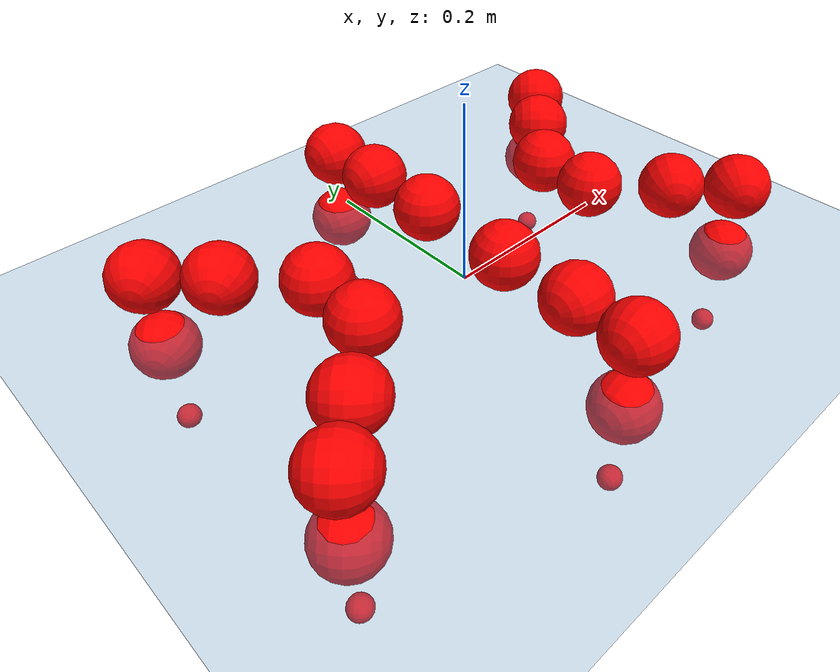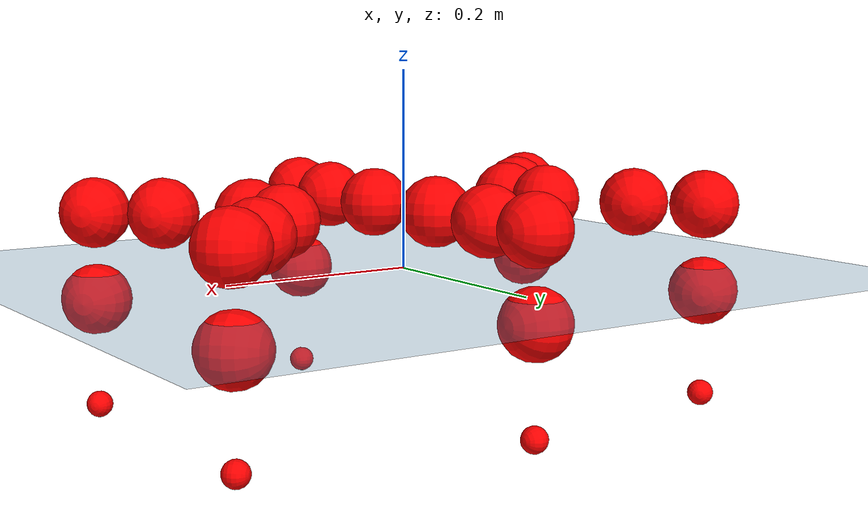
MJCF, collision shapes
<mujoco model="Golem">
  <compiler angle="radian" assetdir="assets" balanceinertia="true" inertiafromgeom="false"/>

  <option timestep="0.005" density="1.2" viscosity="2e-05"/>

  <size nkey="1"/>

  <visual>
    <quality shadowsize="8192"/>
    <map shadowclip="0.5"/>
  </visual>

  <default>
    <default class="/">
      <joint armature="0.01" damping="0.01" frictionloss="0.01"/>
      <geom contype="0" conaffinity="0" group="1" solref="-1000 -80"/>
      <site size="0.01 0.005 0.005" group="5"/>
      <general forcelimited="true" biastype="affine" gainprm="25" biasprm="0 -25 -0.5"/>
      <default class="visual">
        <geom type="mesh" group="2"/>
      </default>
      <default class="collision">
        <geom group="3"/>
      </default>
      <default class="foot">
        <geom size="0.01 0 0" condim="6" group="4" priority="1" solimp="0.015 1 0.01"/>
      </default>
      <default class="reward_collision_sphere">
        <geom group="5" rgba="1 0 0 1"/>
      </default>
    </default>
  </default>

  <asset>
    <texture type="skybox" colorspace="auto" name="//unnamed_texture_0" builtin="gradient" rgb1="0.95 0.95 0.95" rgb2="0.95 0.95 0.95" width="100" height="600"/>
    <texture type="2d" colorspace="auto" name="texplane" builtin="checker" rgb1="0.345 0.575 0.748" rgb2="0.345 0.575 0.748" markrgb="1 1 1" width="512" height="512"/>
    <material name="MatPlane" class="/" texture="texplane" texuniform="true" texrepeat="2 2" specular="0.9"/>
    <mesh name="body" class="/" file="body.stl" scale="0.001 0.001 0.001"/>
    <mesh name="coxa" class="/" file="coxa.stl" scale="0.001 0.001 0.001"/>
    <mesh name="femur" class="/" file="femur.stl" scale="0.001 0.001 0.001"/>
    <mesh name="tibia" class="/" file="tibia.stl" scale="0.001 0.001 0.001"/>
    <mesh name="tarsus" class="/" file="tarsus.stl" scale="0.001 0.001 0.001"/>
  </asset>

  <worldbody>
    <geom name="floor" class="/" size="100 100 0.125" type="plane" group="0" material="MatPlane"/>
    <light name="toplight_shadow" class="/" pos="0 0 5" dir="0.0990148 0.0990148 -0.990148" type="directional" ambient="0.04 0.04 0.04" diffuse="0.55 0.55 0.55" specular="0.12 0.12 0.12"/>
    <light name="toplight_fill" class="/" pos="0 0 5" dir="0.0990148 0.0990148 -0.990148" type="directional" castshadow="false" ambient="0.04 0.04 0.04" diffuse="0.3 0.3 0.3" specular="0.08 0.08 0.08"/>
    <body name="trunk" pos="0.000354608 0.000201444 -0.000224717" quat="1 0.000194823 0.000439343 5.54417e-05">
      <inertial pos="-0.00026921 0.00114379 -0.00275332" quat="0.99999 -0.000535735 0.00429529 -0.00120427" mass="2.52115" diaginertia="0.00985966 0.00117042 0.00914155"/>
      <joint name="//unnamed_joint_0" type="free"/>
      <geom name="//unnamed_geom_1" class="/" pos="0 0 0.0628995" quat="1 0 0 0" type="mesh" rgba="0.9 0.9 0.9 1" mesh="body"/>
      <site name="imu" class="/" pos="0.130129 0.00101259 0.102941" size="0.00877365"/>
      <camera name="track" class="/" pos="0 -1.30184 0" quat="0.707107 0.707107 0 0" mode="trackcom"/>
      <camera name="ego_camera" class="/" pos="0.129788 0 0.0982805" quat="-0.5 -0.5 0.5 0.5"/>
      <body name="coxa_RR" pos="-0.177078 -0.0544189 0.0620558" quat="0.382461 -8.48076e-05 0.000164387 -0.923971">
        <inertial pos="-0.000874173 -0.000761043 -0.000651992" quat="0.999974 -0.00531636 -0.0035347 -0.00336235" mass="0.138266" diaginertia="0.0100221 0.0011697 0.00928217"/>
        <joint name="coxa_joint_RR" class="/" pos="0 0 0" axis="0.000461713 0.00154488 -0.999999" range="-3.13854 3.1101" armature="0.00934465" damping="0.00158776" frictionloss="0.00876123"/>
        <geom name="//unnamed_geom_2" class="/" type="mesh" rgba="0.2 0.2 0.2 1" mesh="coxa"/>
        <geom name="//unnamed_geom_3" class="reward_collision_sphere" size="0.0350946" pos="-0.0299511 0 0"/>
        <body name="femur_RR" pos="0.059124 0.000825743 -0.00103309" quat="0.500056 -0.499885 0.500173 0.499885">
          <inertial pos="0.000689826 -0.000856365 8.7539e-05" quat="0.999996 -0.00210043 0.000116169 -0.00196847" mass="0.134082" diaginertia="0.00981791 0.00115666 0.00913538"/>
          <joint name="femur_joint_RR" class="/" pos="0 0 0" axis="0.000868456 0.00205649 -0.999998" range="-3.15719 3.1539" armature="0.00881034" damping="0.000432509" frictionloss="0.00841048"/>
          <geom name="//unnamed_geom_4" class="/" type="mesh" rgba="0.9 0.9 0.9 1" mesh="femur"/>
          <geom name="//unnamed_geom_5" class="reward_collision_sphere" size="0.0350946"/>
          <body name="tibia_RR" pos="0.000784605 -0.0703978 -0.000530349" quat="0.00021642 1 -0.000142636 0.00024339">
            <inertial pos="0.000364892 0.000527772 -0.000236507" quat="0.999991 -7.60357e-05 -0.00316408 0.00288048" mass="0.137532" diaginertia="0.00982293 0.00116831 0.00915383"/>
            <joint name="tibia_joint_RR" class="/" pos="0 0 0" axis="0.000900919 -0.00117201 0.999999" range="-3.12435 3.14253" armature="0.00884617" damping="0" frictionloss="0.00869649"/>
            <geom name="//unnamed_geom_6" class="/" type="mesh" rgba="0.2 0.2 0.2 1" mesh="tibia"/>
            <geom name="//unnamed_geom_7" class="reward_collision_sphere" size="0.0350946"/>
            <body name="tarsus_RR" pos="0.0877866 0.000757406 -0.000321566" quat="1 0.000325696 0.000193687 0.000219962">
              <inertial pos="0.0616378 0.000575451 0.000595716" quat="0.499204 0.500034 0.500358 0.500403" mass="0.136556" diaginertia="0.0099626 0.00118142 0.00923183"/>
              <joint name="tarsus_joint_RR" class="/" pos="0 0 0" axis="0.000413658 0.00266729 0.999996" stiffness="0.00192306" range="-3.13725 3.13815" armature="0.00896547" damping="0.0419347" frictionloss="0.0087876"/>
              <geom name="//unnamed_geom_8" class="/" type="mesh" rgba="0.9 0.9 0.9 1" mesh="tarsus"/>
              <geom name="foot_1" class="foot" size="0.00857484" pos="0.111818 0 0" quat="0 -0.707107 0 0.707107"/>
              <geom name="//unnamed_geom_10" class="reward_collision_sphere" size="0.0350946"/>
              <geom name="//unnamed_geom_11" class="reward_collision_sphere" size="0.0131605" pos="0.107325 0 0"/>
              <site name="foot_1" class="foot" pos="0.111818 0 0" quat="0 -0.707107 0 0.707107" size="0.00877365"/>
            </body>
          </body>
        </body>
      </body>
      <body name="coxa_RM" pos="-0.00104855 -0.086282 0.0622206" quat="0.7069 9.41519e-05 -2.88315e-05 -0.707314">
        <inertial pos="-0.000325926 5.16608e-06 -3.42087e-05" quat="1 -0.000791879 0.000461135 -0.000286408" mass="0.136269" diaginertia="0.0101278 0.00116587 0.00922183"/>
        <joint name="coxa_joint_RM" class="/" pos="0 0 0" axis="0.00162433 0.000987748 -0.999998" range="-3.14082 3.13553" armature="0.00860743" damping="0.00687103" frictionloss="0.00882155"/>
        <geom name="//unnamed_geom_12" class="/" type="mesh" rgba="0.2 0.2 0.2 1" mesh="coxa"/>
        <geom name="//unnamed_geom_13" class="reward_collision_sphere" size="0.0350946" pos="-0.0299511 0 0"/>
        <body name="femur_RM" pos="0.0585698 0.000593402 0.000239952" quat="0.500048 -0.4996 0.49999 0.500362">
          <inertial pos="0.000334472 0.000664279 -0.000675273" quat="0.999982 -0.00192114 0.00148821 0.00546547" mass="0.131139" diaginertia="0.00985271 0.00114329 0.00898403"/>
          <joint name="femur_joint_RM" class="/" pos="0 0 0" axis="0.000966636 0.00118339 -0.999999" range="-3.16589 3.14089" armature="0.00878881" damping="0.00929791" frictionloss="0.00878745"/>
          <geom name="//unnamed_geom_14" class="/" type="mesh" rgba="0.9 0.9 0.9 1" mesh="femur"/>
          <geom name="//unnamed_geom_15" class="reward_collision_sphere" size="0.0350946"/>
          <body name="tibia_RM" pos="-5.30092e-05 -0.0687856 -0.000802148" quat="3.90781e-05 1 0.000479313 -0.000409941">
            <inertial pos="0.000412752 -6.53637e-05 7.3893e-06" quat="1 0.000772699 -0.000353145 0.00050764" mass="0.135479" diaginertia="0.00992492 0.00115599 0.00898628"/>
            <joint name="tibia_joint_RM" class="/" pos="0 0 0" axis="-0.00192316 -0.00186694 0.999996" range="-3.13983 3.13583" armature="0.00855418" damping="0.00396007" frictionloss="0.00878664"/>
            <geom name="//unnamed_geom_16" class="/" type="mesh" rgba="0.2 0.2 0.2 1" mesh="tibia"/>
            <geom name="//unnamed_geom_17" class="reward_collision_sphere" size="0.0350946"/>
            <body name="tarsus_RM" pos="0.0882358 0.000292697 0.000845458" quat="1 -0.000271376 5.27525e-05 8.75103e-05">
              <inertial pos="0.0599938 0.000230949 0.000162544" quat="0.498492 0.500649 0.501981 0.49887" mass="0.135511" diaginertia="0.00983536 0.00117232 0.00900909"/>
              <joint name="tarsus_joint_RM" class="/" pos="0 0 0" axis="0.00131954 -0.000760992 0.999999" stiffness="0.000397816" range="-3.12987 3.16566" armature="0.00915381" damping="0.00491896" frictionloss="0.00818189"/>
              <geom name="//unnamed_geom_18" class="/" type="mesh" rgba="0.9 0.9 0.9 1" mesh="tarsus"/>
              <geom name="foot_2" class="foot" size="0.00869759" pos="0.111818 0 0" quat="0 -0.707107 0 0.707107"/>
              <geom name="//unnamed_geom_20" class="reward_collision_sphere" size="0.0350946"/>
              <geom name="//unnamed_geom_21" class="reward_collision_sphere" size="0.0131605" pos="0.107325 0 0"/>
              <site name="foot_2" class="foot" pos="0.111818 0 0" quat="0 -0.707107 0 0.707107" size="0.00877365"/>
            </body>
          </body>
        </body>
      </body>
      <body name="coxa_RF" pos="0.17723 -0.0542653 0.0622119" quat="0.923819 5.83591e-05 -8.2602e-05 -0.382829">
        <inertial pos="0.00099117 0.000791762 0.000280469" quat="0.999999 0.000163115 0.00106252 -0.00111617" mass="0.135898" diaginertia="0.0098933 0.00117905 0.00915203"/>
        <joint name="coxa_joint_RF" class="/" pos="0 0 0" axis="-0.000346561 -0.00023699 -1" range="-3.15831 3.12064" armature="0.00910639" damping="0.00302557" frictionloss="0.00897123"/>
        <geom name="//unnamed_geom_22" class="/" type="mesh" rgba="0.2 0.2 0.2 1" mesh="coxa"/>
        <geom name="//unnamed_geom_23" class="reward_collision_sphere" size="0.0350946" pos="-0.0299511 0 0"/>
        <body name="femur_RF" pos="0.0584973 0.000507522 -0.000628895" quat="0.499885 -0.500062 0.500102 0.499951">
          <inertial pos="0.000500402 0.000600177 0.00125763" quat="0.999999 -0.0010269 -0.000993296 -0.000159812" mass="0.132045" diaginertia="0.00979873 0.00115225 0.00894481"/>
          <joint name="femur_joint_RF" class="/" pos="0 0 0" axis="-0.0067921 -0.000176906 -0.999977" range="-3.14332 3.15583" armature="0.00939633" damping="0.00975244" frictionloss="0.00868575"/>
          <geom name="//unnamed_geom_24" class="/" type="mesh" rgba="0.9 0.9 0.9 1" mesh="femur"/>
          <geom name="//unnamed_geom_25" class="reward_collision_sphere" size="0.0350946"/>
          <body name="tibia_RF" pos="0.000880262 -0.0712388 0.000565515" quat="-0.00044035 1 -0.000116915 -0.000294914">
            <inertial pos="0.000664928 8.77077e-05 3.88133e-05" quat="1 -4.08065e-05 0.000321734 0.000216382" mass="0.13456" diaginertia="0.00999235 0.00116809 0.00934374"/>
            <joint name="tibia_joint_RF" class="/" pos="0 0 0" axis="-1.27297e-05 3.84819e-06 1" range="-3.13969 3.15451" armature="0.00892167" damping="0.0116402" frictionloss="0.00851862"/>
            <geom name="//unnamed_geom_26" class="/" type="mesh" rgba="0.2 0.2 0.2 1" mesh="tibia"/>
            <geom name="//unnamed_geom_27" class="reward_collision_sphere" size="0.0350946"/>
            <body name="tarsus_RF" pos="0.0866352 0.00039518 -0.000369555" quat="1 -0.000254274 1.6576e-05 0.000516717">
              <inertial pos="0.0588418 0.000308097 -0.000427883" quat="0.49881 0.502135 0.501076 0.497968" mass="0.136187" diaginertia="0.01004 0.00118176 0.00919875"/>
              <joint name="tarsus_joint_RF" class="/" pos="0 0 0" axis="0.00376438 0.00686315 0.999969" stiffness="0.000459843" range="-3.13981 3.14102" armature="0.00881534" damping="0" frictionloss="0.00843497"/>
              <geom name="//unnamed_geom_28" class="/" type="mesh" rgba="0.9 0.9 0.9 1" mesh="tarsus"/>
              <geom name="foot_3" class="foot" size="0.00880803" pos="0.111818 0 0" quat="0 -0.707107 0 0.707107"/>
              <geom name="//unnamed_geom_30" class="reward_collision_sphere" size="0.0350946"/>
              <geom name="//unnamed_geom_31" class="reward_collision_sphere" size="0.0131605" pos="0.107325 0 0"/>
              <site name="foot_3" class="foot" pos="0.111818 0 0" quat="0 -0.707107 0 0.707107" size="0.00877365"/>
            </body>
          </body>
        </body>
      </body>
      <body name="coxa_LR" pos="-0.175481 0.0567989 0.064661" quat="0.382855 -0.000136221 -5.668e-05 0.923808">
        <inertial pos="-0.000161662 -4.56018e-05 0.000297603" quat="0.999999 3.67063e-05 0.00102834 0.000532289" mass="0.136148" diaginertia="0.00984427 0.00117164 0.00898854"/>
        <joint name="coxa_joint_LR" class="/" pos="0 0 0" axis="-0.000297199 0.00552765 -0.999985" range="-3.13635 3.14036" armature="0.00922861" damping="0.00475595" frictionloss="0.00875322"/>
        <geom name="//unnamed_geom_32" class="/" type="mesh" rgba="0.2 0.2 0.2 1" mesh="coxa"/>
        <geom name="//unnamed_geom_33" class="reward_collision_sphere" size="0.0350946" pos="-0.0299511 0 0"/>
        <body name="femur_LR" pos="0.0610842 -0.00196379 -0.00135756" quat="0.499652 -0.500335 0.499858 0.500155">
          <inertial pos="0.000213927 -0.000666331 -0.0011054" quat="0.999991 0.00409074 0.000639928 0.000212838" mass="0.134064" diaginertia="0.00981029 0.00118251 0.00908636"/>
          <joint name="femur_joint_LR" class="/" pos="0 0 0" axis="0.000106495 0.000362644 1" range="-3.15276 3.14983" armature="0.00874661" damping="0" frictionloss="0.00891277"/>
          <geom name="//unnamed_geom_34" class="/" type="mesh" rgba="0.9 0.9 0.9 1" mesh="femur"/>
          <geom name="//unnamed_geom_35" class="reward_collision_sphere" size="0.0350946"/>
          <body name="tibia_LR" pos="0.000609654 -0.0713421 -0.00135663" quat="1.10713e-05 1 -2.19667e-06 2.63004e-05">
            <inertial pos="-0.00163722 0.000593538 -0.00064359" quat="0.999997 0.000856734 -0.00163134 -0.00175099" mass="0.135069" diaginertia="0.00984937 0.00116643 0.00918253"/>
            <joint name="tibia_joint_LR" class="/" pos="0 0 0" axis="0.00095717 -0.00110777 -0.999999" range="-3.12357 3.13711" armature="0.00916599" damping="0.00340488" frictionloss="0.00906947"/>
            <geom name="//unnamed_geom_36" class="/" type="mesh" rgba="0.2 0.2 0.2 1" mesh="tibia"/>
            <geom name="//unnamed_geom_37" class="reward_collision_sphere" size="0.0350946"/>
            <body name="tarsus_LR" pos="0.088931 0.00104296 0.00132361" quat="1 -1.25512e-05 -1.33979e-05 7.45519e-06">
              <inertial pos="0.0607889 0.000903148 -0.000113028" quat="0.500248 0.499711 0.500804 0.499235" mass="0.137598" diaginertia="0.0100983 0.00116792 0.00923411"/>
              <joint name="tarsus_joint_LR" class="/" pos="0 0 0" axis="-0.0065679 -0.0007607 -0.999978" stiffness="0.00379442" range="-3.14946 3.14364" armature="0.00860741" damping="0.0288947" frictionloss="0.00869769"/>
              <geom name="//unnamed_geom_38" class="/" type="mesh" rgba="0.9 0.9 0.9 1" mesh="tarsus"/>
              <geom name="foot_4" class="foot" size="0.00852337" pos="0.111818 0 0" quat="0.707107 0 -0.707107 0"/>
              <geom name="//unnamed_geom_40" class="reward_collision_sphere" size="0.0350946"/>
              <geom name="//unnamed_geom_41" class="reward_collision_sphere" size="0.0131605" pos="0.107325 0 0"/>
              <site name="foot_4" class="foot" pos="0.111818 0 0" quat="0.707107 0 -0.707107 0" size="0.00877365"/>
            </body>
          </body>
        </body>
      </body>
      <body name="coxa_LM" pos="-0.00150928 0.0846766 0.0633032" quat="0.707149 6.57755e-05 -0.000108348 0.707065">
        <inertial pos="0.00110684 0.00113396 2.40253e-05" quat="1 -0.000128002 -0.000218132 -0.000130951" mass="0.135237" diaginertia="0.0098991 0.00117129 0.0092024"/>
        <joint name="coxa_joint_LM" class="/" pos="0 0 0" axis="0.00195877 0.00365768 -0.999991" range="-3.15397 3.15423" armature="0.00892334" damping="0.00742344" frictionloss="0.00841527"/>
        <geom name="//unnamed_geom_42" class="/" type="mesh" rgba="0.2 0.2 0.2 1" mesh="coxa"/>
        <geom name="//unnamed_geom_43" class="reward_collision_sphere" size="0.0350946" pos="-0.0299511 0 0"/>
        <body name="femur_LM" pos="0.0552056 0.000516891 -0.000279769" quat="0.500373 -0.499562 0.500341 0.499723">
          <inertial pos="0.00044259 -0.000875055 -0.000354874" quat="1 -0.000270655 -0.000240045 0.000485834" mass="0.134855" diaginertia="0.0098908 0.00117549 0.00916636"/>
          <joint name="femur_joint_LM" class="/" pos="0 0 0" axis="-0.00277334 -0.0017313 0.999995" range="-3.15661 3.14058" armature="0.00826972" damping="0.00400298" frictionloss="0.00878322"/>
          <geom name="//unnamed_geom_44" class="/" type="mesh" rgba="0.9 0.9 0.9 1" mesh="femur"/>
          <geom name="//unnamed_geom_45" class="reward_collision_sphere" size="0.0350946"/>
          <body name="tibia_LM" pos="0.000593838 -0.0689302 0.00114357" quat="-5.11319e-05 1 3.69084e-05 9.76823e-06">
            <inertial pos="-0.000718122 -0.0010371 -0.00100357" quat="0.999996 0.000160889 -0.000882622 0.00281484" mass="0.134579" diaginertia="0.00994614 0.00118288 0.00937225"/>
            <joint name="tibia_joint_LM" class="/" pos="0 0 0" axis="-0.000683579 0.00133954 -0.999999" range="-3.12793 3.13312" armature="0.00888176" damping="0.000410136" frictionloss="0.00910935"/>
            <geom name="//unnamed_geom_46" class="/" type="mesh" rgba="0.2 0.2 0.2 1" mesh="tibia"/>
            <geom name="//unnamed_geom_47" class="reward_collision_sphere" size="0.0350946"/>
            <body name="tarsus_LM" pos="0.0863354 -1.94752e-05 -0.00160935" quat="1 6.99209e-06 1.31225e-05 9.08286e-05">
              <inertial pos="0.0602578 -9.36121e-05 -8.65627e-05" quat="0.497821 0.503284 0.497989 0.500887" mass="0.138073" diaginertia="0.00986618 0.00118124 0.00918259"/>
              <joint name="tarsus_joint_LM" class="/" pos="0 0 0" axis="0.0058033 -0.00560111 -0.999967" range="-3.13832 3.14968" armature="0.00886243" damping="0.00666619" frictionloss="0.0087802"/>
              <geom name="//unnamed_geom_48" class="/" type="mesh" rgba="0.9 0.9 0.9 1" mesh="tarsus"/>
              <geom name="foot_5" class="foot" size="0.00854409" pos="0.111818 0 0" quat="0.707107 0 -0.707107 0"/>
              <geom name="//unnamed_geom_50" class="reward_collision_sphere" size="0.0350946"/>
              <geom name="//unnamed_geom_51" class="reward_collision_sphere" size="0.0131605" pos="0.107325 0 0"/>
              <site name="foot_5" class="foot" pos="0.111818 0 0" quat="0.707107 0 -0.707107 0" size="0.00877365"/>
            </body>
          </body>
        </body>
      </body>
      <body name="coxa_LF" pos="0.1777 0.0542279 0.0629404" quat="0.923872 3.08793e-05 6.34506e-05 0.382703">
        <inertial pos="4.15841e-05 3.79785e-05 0.000469491" quat="1 7.52514e-05 6.88471e-05 -3.74074e-05" mass="0.133417" diaginertia="0.00988134 0.0011604 0.0091184"/>
        <joint name="coxa_joint_LF" class="/" pos="0 0 0" axis="0.000425789 0.000825822 -1" range="-3.13531 3.15702" armature="0.00870931" damping="0.00381447" frictionloss="0.00873136"/>
        <geom name="//unnamed_geom_52" class="/" type="mesh" rgba="0.2 0.2 0.2 1" mesh="coxa"/>
        <geom name="//unnamed_geom_53" class="reward_collision_sphere" size="0.0350946" pos="-0.0299511 0 0"/>
        <body name="femur_LF" pos="0.0596179 0.00179805 -0.00186475" quat="0.500205 -0.499962 0.499822 0.500011">
          <inertial pos="-0.000336336 -0.000826699 0.00012772" quat="0.999999 0.000135006 -0.000175159 0.00153975" mass="0.136175" diaginertia="0.00992135 0.00118468 0.00927249"/>
          <joint name="femur_joint_LF" class="/" pos="0 0 0" axis="0.00293258 -0.00280246 0.999992" range="-3.13824 3.12652" armature="0.00877098" damping="0" frictionloss="0.00888597"/>
          <geom name="//unnamed_geom_54" class="/" type="mesh" rgba="0.9 0.9 0.9 1" mesh="femur"/>
          <geom name="//unnamed_geom_55" class="reward_collision_sphere" size="0.0350946"/>
          <body name="tibia_LF" pos="-0.00037441 -0.0707175 -0.000614226" quat="0.000140573 1 4.50865e-05 2.26703e-05">
            <inertial pos="-0.000437302 -0.000975276 0.000578954" quat="0.999994 0.00128568 -0.00235789 0.00224805" mass="0.135083" diaginertia="0.00993692 0.00115499 0.00908723"/>
            <joint name="tibia_joint_LF" class="/" pos="0 0 0" axis="0.00220986 -0.0025743 -0.999994" range="-3.1445 3.15716" armature="0.00816577" damping="0.00204448" frictionloss="0.00880261"/>
            <geom name="//unnamed_geom_56" class="/" type="mesh" rgba="0.2 0.2 0.2 1" mesh="tibia"/>
            <geom name="//unnamed_geom_57" class="reward_collision_sphere" size="0.0350946"/>
            <body name="tarsus_LF" pos="0.0870668 -0.000573612 -0.000407478" quat="1 0.00033156 -0.000426746 0.000489528">
              <inertial pos="0.060037 -0.000133223 6.60695e-05" quat="0.499195 0.500703 0.499689 0.500412" mass="0.135052" diaginertia="0.00996341 0.00117095 0.00912978"/>
              <joint name="tarsus_joint_LF" class="/" pos="0 0 0" axis="-0.00206117 -0.00274818 -0.999994" range="-3.13275 3.14674" armature="0.00888366" damping="0.00933974" frictionloss="0.00888339"/>
              <geom name="//unnamed_geom_58" class="/" type="mesh" rgba="0.9 0.9 0.9 1" mesh="tarsus"/>
              <geom name="foot_6" class="foot" size="0.00870324" pos="0.111818 0 0" quat="0.707107 0 -0.707107 0"/>
              <geom name="//unnamed_geom_60" class="reward_collision_sphere" size="0.0350946"/>
              <geom name="//unnamed_geom_61" class="reward_collision_sphere" size="0.0131605" pos="0.107325 0 0"/>
              <site name="foot_6" class="foot" pos="0.111818 0 0" quat="0.707107 0 -0.707107 0" size="0.00877365"/>
            </body>
          </body>
        </body>
      </body>
    </body>
  </worldbody>

  <contact>
    <pair class="/" geom1="floor" geom2="foot_1" name="//unnamed_contact_0"/>
    <pair class="/" geom1="floor" geom2="foot_2" name="//unnamed_contact_1"/>
    <pair class="/" geom1="floor" geom2="foot_3" name="//unnamed_contact_2"/>
    <pair class="/" geom1="floor" geom2="foot_4" name="//unnamed_contact_3"/>
    <pair class="/" geom1="floor" geom2="foot_5" name="//unnamed_contact_4"/>
    <pair class="/" geom1="floor" geom2="foot_6" name="//unnamed_contact_5"/>
  </contact>

  <actuator>
    <general name="coxa_joint_RR" class="/" joint="coxa_joint_RR" forcerange="-6.46558 6.46558" gainprm="20.8666" biasprm="0 -20.8666 -0.459036"/>
    <general name="femur_joint_RR" class="/" joint="femur_joint_RR" forcerange="-6.38914 6.38914" gainprm="20.8666" biasprm="0 -20.8666 -0.459036"/>
    <general name="tibia_joint_RR" class="/" joint="tibia_joint_RR" forcerange="-6.33572 6.33572" gainprm="20.8666" biasprm="0 -20.8666 -0.459036"/>
    <general name="tarsus_joint_RR" class="/" joint="tarsus_joint_RR" forcerange="-6.43423 6.43423" gainprm="20.8666" biasprm="0 -20.8666 -0.459036"/>
    <general name="coxa_joint_RM" class="/" joint="coxa_joint_RM" forcerange="-6.4863 6.4863" gainprm="20.8666" biasprm="0 -20.8666 -0.459036"/>
    <general name="femur_joint_RM" class="/" joint="femur_joint_RM" forcerange="-6.43162 6.43162" gainprm="20.8666" biasprm="0 -20.8666 -0.459036"/>
    <general name="tibia_joint_RM" class="/" joint="tibia_joint_RM" forcerange="-6.38589 6.38589" gainprm="20.8666" biasprm="0 -20.8666 -0.459036"/>
    <general name="tarsus_joint_RM" class="/" joint="tarsus_joint_RM" forcerange="-6.25684 6.25684" gainprm="20.8666" biasprm="0 -20.8666 -0.459036"/>
    <general name="coxa_joint_RF" class="/" joint="coxa_joint_RF" forcerange="-6.37603 6.37603" gainprm="20.8666" biasprm="0 -20.8666 -0.459036"/>
    <general name="femur_joint_RF" class="/" joint="femur_joint_RF" forcerange="-6.47622 6.47622" gainprm="20.8666" biasprm="0 -20.8666 -0.459036"/>
    <general name="tibia_joint_RF" class="/" joint="tibia_joint_RF" forcerange="-6.30164 6.30164" gainprm="20.8666" biasprm="0 -20.8666 -0.459036"/>
    <general name="tarsus_joint_RF" class="/" joint="tarsus_joint_RF" forcerange="-6.19196 6.19196" gainprm="20.8666" biasprm="0 -20.8666 -0.459036"/>
    <general name="coxa_joint_LR" class="/" joint="coxa_joint_LR" forcerange="-6.31644 6.31644" gainprm="20.8666" biasprm="0 -20.8666 -0.459036"/>
    <general name="femur_joint_LR" class="/" joint="femur_joint_LR" forcerange="-6.6246 6.6246" gainprm="20.8666" biasprm="0 -20.8666 -0.459036"/>
    <general name="tibia_joint_LR" class="/" joint="tibia_joint_LR" forcerange="-6.19149 6.19149" gainprm="20.8666" biasprm="0 -20.8666 -0.459036"/>
    <general name="tarsus_joint_LR" class="/" joint="tarsus_joint_LR" forcerange="-6.6843 6.6843" gainprm="20.8666" biasprm="0 -20.8666 -0.459036"/>
    <general name="coxa_joint_LM" class="/" joint="coxa_joint_LM" forcerange="-6.18087 6.18087" gainprm="20.8666" biasprm="0 -20.8666 -0.459036"/>
    <general name="femur_joint_LM" class="/" joint="femur_joint_LM" forcerange="-6.45651 6.45651" gainprm="20.8666" biasprm="0 -20.8666 -0.459036"/>
    <general name="tibia_joint_LM" class="/" joint="tibia_joint_LM" forcerange="-6.42501 6.42501" gainprm="20.8666" biasprm="0 -20.8666 -0.459036"/>
    <general name="tarsus_joint_LM" class="/" joint="tarsus_joint_LM" forcerange="-6.59991 6.59991" gainprm="20.8666" biasprm="0 -20.8666 -0.459036"/>
    <general name="coxa_joint_LF" class="/" joint="coxa_joint_LF" forcerange="-6.44192 6.44192" gainprm="20.8666" biasprm="0 -20.8666 -0.459036"/>
    <general name="femur_joint_LF" class="/" joint="femur_joint_LF" forcerange="-6.41875 6.41875" gainprm="20.8666" biasprm="0 -20.8666 -0.459036"/>
    <general name="tibia_joint_LF" class="/" joint="tibia_joint_LF" forcerange="-6.26011 6.26011" gainprm="20.8666" biasprm="0 -20.8666 -0.459036"/>
    <general name="tarsus_joint_LF" class="/" joint="tarsus_joint_LF" forcerange="-6.34793 6.34793" gainprm="20.8666" biasprm="0 -20.8666 -0.459036"/>
  </actuator>

  <sensor>
    <gyro site="imu" name="imu_angular_velocity"/>
    <velocimeter site="imu" name="imu_linear_velocity"/>
    <framelinvel objtype="site" objname="foot_1" name="foot_1_global_linear_velocity"/>
    <framelinvel objtype="site" objname="foot_2" name="foot_2_global_linear_velocity"/>
    <framelinvel objtype="site" objname="foot_3" name="foot_3_global_linear_velocity"/>
    <framelinvel objtype="site" objname="foot_4" name="foot_4_global_linear_velocity"/>
    <framelinvel objtype="site" objname="foot_5" name="foot_5_global_linear_velocity"/>
    <framelinvel objtype="site" objname="foot_6" name="foot_6_global_linear_velocity"/>
  </sensor>

  <keyframe>
    <key name="home" qpos="0 0 0.1457 1 0 0 0 0 0 0 0 0 0 0 0 0 0 0 0 0 0 0 0 0 0 0 0 0 0 0 0"/>
  </keyframe>
</mujoco>
